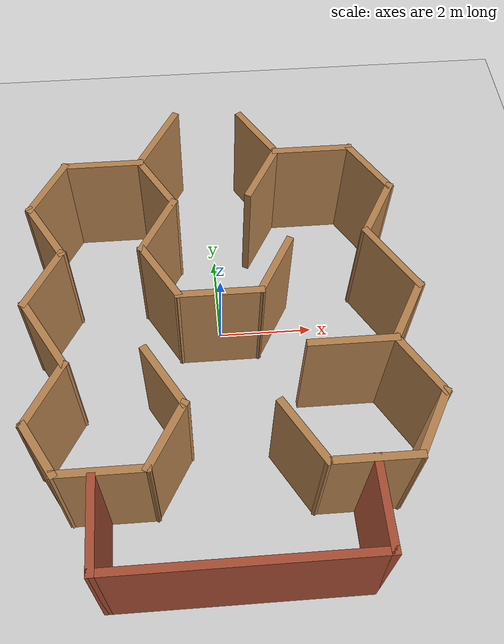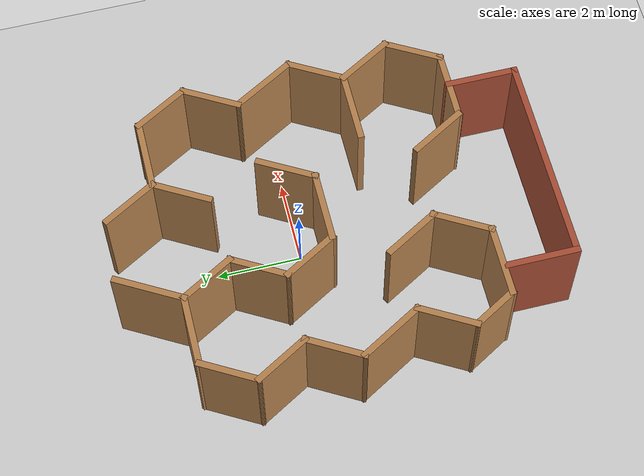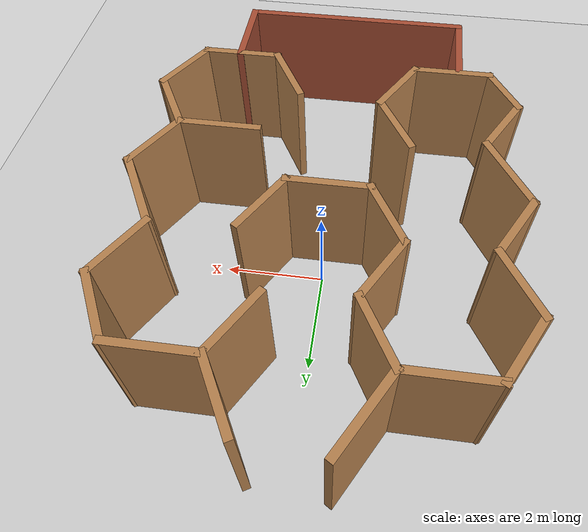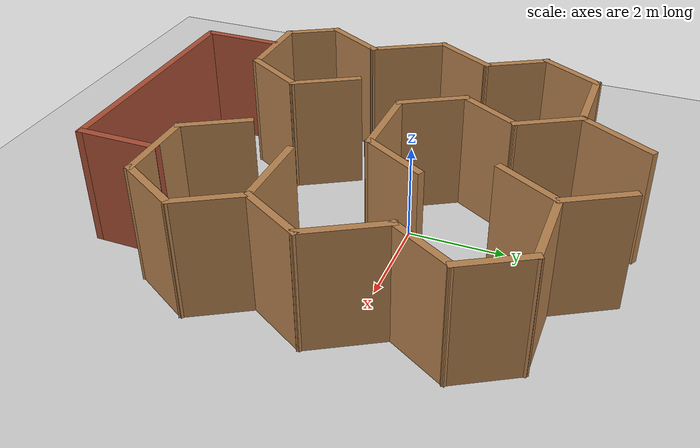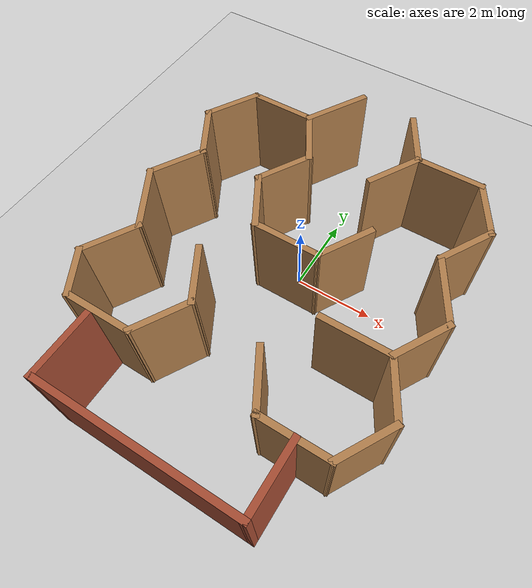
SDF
<sdf version="1.7">
 <world name="default">
  <light name="sun" type="directional">
   <pose>0 0 10 0 -0 0</pose>
   <diffuse>0.8 0.8 0.8 1</diffuse>
   <specular>0.2 0.2 0.2 1</specular>
   <attenuation>
    <range>1000</range>
    <constant>0.9</constant>
    <linear>0.01</linear>
    <quadratic>0.001</quadratic>
   </attenuation>
   <direction>-0.5 0.1 -0.9</direction>
   <spot><inner_angle>0</inner_angle><outer_angle>0</outer_angle><falloff>0</falloff></spot>
  </light>
  <model name="ground_plane">
   <static>1</static>
   <link name="link">
    <collision name="collision">
     <geometry><plane><normal>0 0 1</normal><size>100 100</size></plane></geometry>
     <surface><friction><ode><mu>100</mu><mu2>50</mu2></ode></friction></surface>
    </collision>
    <visual name="visual">
     <cast_shadows>0</cast_shadows>
     <geometry><plane><normal>0 0 1</normal><size>100 100</size></plane></geometry>
     <material>
      <script><uri>file://media/materials/scripts/gazebo.material</uri><name>Gazebo/Grey</name></script>
     </material>
    </visual>
   </link>
  </model>
  <gravity>0 0 -9.8</gravity>
  <magnetic_field>6e-06 2.3e-05 -4.2e-05</magnetic_field>
  <atmosphere type="adiabatic"/>
  <physics type="ode">
   <max_step_size>0.001</max_step_size>
   <real_time_factor>1</real_time_factor>
   <real_time_update_rate>1000</real_time_update_rate>
  </physics>
  <scene><ambient>0.4 0.4 0.4 1</ambient><background>0.7 0.7 0.7 1</background><shadows>1</shadows></scene>
  <audio><device>default</device></audio>
  <spherical_coordinates>
   <surface_model>EARTH_WGS84</surface_model>
   <latitude_deg>0</latitude_deg>
   <longitude_deg>0</longitude_deg>
   <elevation>0</elevation>
   <heading_deg>0</heading_deg>
  </spherical_coordinates>
  <model name="3*3_sigma_maze">
   <pose>0.010993 -0.702151 0 0 -0 0</pose>
   <link name="Wall_0">
    <collision name="Wall_0_Collision">
     <geometry><box><size>1.5 0.15 2.5</size></box></geometry>
     <pose>0 0 1.25 0 -0 0</pose>
    </collision>
    <visual name="Wall_0_Visual">
     <pose>0 0 1.25 0 -0 0</pose>
     <geometry><box><size>1.5 0.15 2.5</size></box></geometry>
     <material>
      <script><uri>file://media/materials/scripts/gazebo.material</uri><name>Gazebo/Wood</name></script>
      <ambient>1 1 1 1</ambient>
     </material>
     <meta><layer>0</layer></meta>
    </visual>
    <pose>-1.1959 -1.61502 0 0 -0 -1.0472</pose>
   </link>
   <link name="Wall_1">
    <collision name="Wall_1_Collision">
     <geometry><box><size>1.5 0.15 2.5</size></box></geometry>
     <pose>0 0 1.25 0 -0 0</pose>
    </collision>
    <visual name="Wall_1_Visual">
     <pose>0 0 1.25 0 -0 0</pose>
     <geometry><box><size>1.5 0.15 2.5</size></box></geometry>
     <material>
      <script><uri>file://media/materials/scripts/gazebo.material</uri><name>Gazebo/Wood</name></script>
      <ambient>1 1 1 1</ambient>
     </material>
     <meta><layer>0</layer></meta>
    </visual>
    <pose>-1.1959 -2.78416 0 0 -0 -2.0944</pose>
   </link>
   <link name="Wall_10">
    <collision name="Wall_10_Collision">
     <geometry><box><size>1.5 0.15 2.5</size></box></geometry>
     <pose>0 0 1.25 0 -0 0</pose>
    </collision>
    <visual name="Wall_10_Visual">
     <pose>0 0 1.25 0 -0 0</pose>
     <geometry><box><size>1.5 0.15 2.5</size></box></geometry>
     <material>
      <script><uri>file://media/materials/scripts/gazebo.material</uri><name>Gazebo/Wood</name></script>
      <ambient>1 1 1 1</ambient>
     </material>
     <meta><layer>0</layer></meta>
    </visual>
    <pose>-1.1959 3.06151 0 0 -0 -1.0472</pose>
   </link>
   <link name="Wall_11">
    <collision name="Wall_11_Collision">
     <geometry><box><size>1.5 0.15 2.5</size></box></geometry>
     <pose>0 0 1.25 0 -0 0</pose>
    </collision>
    <visual name="Wall_11_Visual">
     <pose>0 0 1.25 0 -0 0</pose>
     <geometry><box><size>1.5 0.15 2.5</size></box></geometry>
     <material>
      <script><uri>file://media/materials/scripts/gazebo.material</uri><name>Gazebo/Wood</name></script>
      <ambient>1 1 1 1</ambient>
     </material>
     <meta><layer>0</layer></meta>
    </visual>
    <pose>-1.1959 1.89238 0 0 -0 -2.0944</pose>
   </link>
   <link name="Wall_12">
    <collision name="Wall_12_Collision">
     <geometry><box><size>1.5 0.15 2.5</size></box></geometry>
     <pose>0 0 1.25 0 -0 0</pose>
    </collision>
    <visual name="Wall_12_Visual">
     <pose>0 0 1.25 0 -0 0</pose>
     <geometry><box><size>1.5 0.15 2.5</size></box></geometry>
     <material>
      <script><uri>file://media/materials/scripts/gazebo.material</uri><name>Gazebo/Wood</name></script>
      <ambient>1 1 1 1</ambient>
     </material>
     <meta><layer>0</layer></meta>
    </visual>
    <pose>-1.1959 0.723244 0 0 -0 -1.0472</pose>
   </link>
   <link name="Wall_13">
    <collision name="Wall_13_Collision">
     <geometry><box><size>1.75 0.15 2.5</size></box></geometry>
     <pose>0 0 1.25 0 -0 0</pose>
    </collision>
    <visual name="Wall_13_Visual">
     <pose>0 0 1.25 0 -0 0</pose>
     <geometry><box><size>1.75 0.15 2.5</size></box></geometry>
     <material>
      <script><uri>file://media/materials/scripts/gazebo.material</uri><name>Gazebo/Wood</name></script>
      <ambient>1 1 1 1</ambient>
     </material>
     <meta><layer>0</layer></meta>
    </visual>
    <pose>-0.0584 0.138676 0 0 -0 0</pose>
   </link>
   <link name="Wall_14">
    <collision name="Wall_14_Collision">
     <geometry><box><size>1.5 0.15 2.5</size></box></geometry>
     <pose>0 0 1.25 0 -0 0</pose>
    </collision>
    <visual name="Wall_14_Visual">
     <pose>0 0 1.25 0 -0 0</pose>
     <geometry><box><size>1.5 0.15 2.5</size></box></geometry>
     <material>
      <script><uri>file://media/materials/scripts/gazebo.material</uri><name>Gazebo/Wood</name></script>
      <ambient>1 1 1 1</ambient>
     </material>
     <meta><layer>0</layer></meta>
    </visual>
    <pose>1.0791 0.723244 0 0 -0 1.0472</pose>
   </link>
   <link name="Wall_16">
    <collision name="Wall_16_Collision">
     <geometry><box><size>1.75 0.15 2.5</size></box></geometry>
     <pose>0 0 1.25 0 -0 0</pose>
    </collision>
    <visual name="Wall_16_Visual">
     <pose>0 0 1.25 0 -0 0</pose>
     <geometry><box><size>1.75 0.15 2.5</size></box></geometry>
     <material>
      <script><uri>file://media/materials/scripts/gazebo.material</uri><name>Gazebo/Wood</name></script>
      <ambient>1 1 1 1</ambient>
     </material>
     <meta><layer>0</layer></meta>
    </visual>
    <pose>-1.1334 4.3389 0 0 -0 1.0472</pose>
   </link>
   <link name="Wall_18">
    <collision name="Wall_18_Collision">
     <geometry><box><size>1.5 0.15 2.5</size></box></geometry>
     <pose>0 0 1.25 0 -0 0</pose>
    </collision>
    <visual name="Wall_18_Visual">
     <pose>0 0 1.25 0 -0 0</pose>
     <geometry><box><size>1.5 0.15 2.5</size></box></geometry>
     <material>
      <script><uri>file://media/materials/scripts/gazebo.material</uri><name>Gazebo/Wood</name></script>
      <ambient>1 1 1 1</ambient>
     </material>
     <meta><layer>0</layer></meta>
    </visual>
    <pose>1.0709 4.35267 0 0 -0 -1.0472</pose>
   </link>
   <link name="Wall_19">
    <collision name="Wall_19_Collision">
     <geometry><box><size>1.5 0.15 2.5</size></box></geometry>
     <pose>0 0 1.25 0 -0 0</pose>
    </collision>
    <visual name="Wall_19_Visual">
     <pose>0 0 1.25 0 -0 0</pose>
     <geometry><box><size>1.5 0.15 2.5</size></box></geometry>
     <material>
      <script><uri>file://media/materials/scripts/gazebo.material</uri><name>Gazebo/Wood</name></script>
      <ambient>1 1 1 1</ambient>
     </material>
     <meta><layer>0</layer></meta>
    </visual>
    <pose>1.0709 3.18354 0 0 -0 -2.0944</pose>
   </link>
   <link name="Wall_2">
    <collision name="Wall_2_Collision">
     <geometry><box><size>1.75 0.15 2.5</size></box></geometry>
     <pose>0 0 1.25 0 -0 0</pose>
    </collision>
    <visual name="Wall_2_Visual">
     <pose>0 0 1.25 0 -0 0</pose>
     <geometry><box><size>1.75 0.15 2.5</size></box></geometry>
     <material>
      <script><uri>file://media/materials/scripts/gazebo.material</uri><name>Gazebo/Wood</name></script>
      <ambient>1 1 1 1</ambient>
     </material>
     <meta><layer>0</layer></meta>
    </visual>
    <pose>-2.3334 -3.36873 0 0 -0 3.14159</pose>
   </link>
   <link name="Wall_21">
    <collision name="Wall_21_Collision">
     <geometry><box><size>1.75 0.15 2.5</size></box></geometry>
     <pose>0 0 1.25 0 -0 0</pose>
    </collision>
    <visual name="Wall_21_Visual">
     <pose>0 0 1.25 0 -0 0</pose>
     <geometry><box><size>1.75 0.15 2.5</size></box></geometry>
     <material>
      <script><uri>file://media/materials/scripts/gazebo.material</uri><name>Gazebo/Wood</name></script>
      <ambient>1 1 1 1</ambient>
     </material>
     <meta><layer>0</layer></meta>
    </visual>
    <pose>2.2084 3.7681 0 0 -0 0</pose>
   </link>
   <link name="Wall_22">
    <collision name="Wall_22_Collision">
     <geometry><box><size>1.5 0.15 2.5</size></box></geometry>
     <pose>0 0 1.25 0 -0 0</pose>
    </collision>
    <visual name="Wall_22_Visual">
     <pose>0 0 1.25 0 -0 0</pose>
     <geometry><box><size>1.5 0.15 2.5</size></box></geometry>
     <material>
      <script><uri>file://media/materials/scripts/gazebo.material</uri><name>Gazebo/Wood</name></script>
      <ambient>1 1 1 1</ambient>
     </material>
     <meta><layer>0</layer></meta>
    </visual>
    <pose>3.3459 3.18354 0 0 -0 -1.0472</pose>
   </link>
   <link name="Wall_23">
    <collision name="Wall_23_Collision">
     <geometry><box><size>1.5 0.15 2.5</size></box></geometry>
     <pose>0 0 1.25 0 -0 0</pose>
    </collision>
    <visual name="Wall_23_Visual">
     <pose>0 0 1.25 0 -0 0</pose>
     <geometry><box><size>1.5 0.15 2.5</size></box></geometry>
     <material>
      <script><uri>file://media/materials/scripts/gazebo.material</uri><name>Gazebo/Wood</name></script>
      <ambient>1 1 1 1</ambient>
     </material>
     <meta><layer>0</layer></meta>
    </visual>
    <pose>3.3459 2.0144 0 0 -0 -2.0944</pose>
   </link>
   <link name="Wall_24">
    <collision name="Wall_24_Collision">
     <geometry><box><size>1.75 0.15 2.5</size></box></geometry>
     <pose>0 0 1.25 0 -0 0</pose>
    </collision>
    <visual name="Wall_24_Visual">
     <pose>0 0 1.25 0 -0 0</pose>
     <geometry><box><size>1.75 0.15 2.5</size></box></geometry>
     <material>
      <script><uri>file://media/materials/scripts/gazebo.material</uri><name>Gazebo/Wood</name></script>
      <ambient>1 1 1 1</ambient>
     </material>
     <meta><layer>0</layer></meta>
    </visual>
    <pose>3.4084 0.737016 0 0 -0 -1.0472</pose>
   </link>
   <link name="Wall_25">
    <collision name="Wall_25_Collision">
     <geometry><box><size>1.5 0.15 2.5</size></box></geometry>
     <pose>0 0 1.25 0 -0 0</pose>
    </collision>
    <visual name="Wall_25_Visual">
     <pose>0 0 1.25 0 -0 0</pose>
     <geometry><box><size>1.5 0.15 2.5</size></box></geometry>
     <material>
      <script><uri>file://media/materials/scripts/gazebo.material</uri><name>Gazebo/Wood</name></script>
      <ambient>1 1 1 1</ambient>
     </material>
     <meta><layer>0</layer></meta>
    </visual>
    <pose>3.4709 -0.540372 0 0 -0 -2.0944</pose>
   </link>
   <link name="Wall_26">
    <collision name="Wall_26_Collision">
     <geometry><box><size>1.5 0.15 2.5</size></box></geometry>
     <pose>0 0 1.25 0 -0 0</pose>
    </collision>
    <visual name="Wall_26_Visual">
     <pose>0 0 1.25 0 -0 0</pose>
     <geometry><box><size>1.5 0.15 2.5</size></box></geometry>
     <material>
      <script><uri>file://media/materials/scripts/gazebo.material</uri><name>Gazebo/Wood</name></script>
      <ambient>1 1 1 1</ambient>
     </material>
     <meta><layer>0</layer></meta>
    </visual>
    <pose>3.4709 -1.70951 0 0 -0 -1.0472</pose>
   </link>
   <link name="Wall_27">
    <collision name="Wall_27_Collision">
     <geometry><box><size>1.5 0.15 2.5</size></box></geometry>
     <pose>0 0 1.25 0 -0 0</pose>
    </collision>
    <visual name="Wall_27_Visual">
     <pose>0 0 1.25 0 -0 0</pose>
     <geometry><box><size>1.5 0.15 2.5</size></box></geometry>
     <material>
      <script><uri>file://media/materials/scripts/gazebo.material</uri><name>Gazebo/Wood</name></script>
      <ambient>1 1 1 1</ambient>
     </material>
     <meta><layer>0</layer></meta>
    </visual>
    <pose>3.4709 -2.87864 0 0 -0 -2.0944</pose>
   </link>
   <link name="Wall_28">
    <collision name="Wall_28_Collision">
     <geometry><box><size>1.75 0.15 2.5</size></box></geometry>
     <pose>0 0 1.25 0 -0 0</pose>
    </collision>
    <visual name="Wall_28_Visual">
     <pose>0 0 1.25 0 -0 0</pose>
     <geometry><box><size>1.75 0.15 2.5</size></box></geometry>
     <material>
      <script><uri>file://media/materials/scripts/gazebo.material</uri><name>Gazebo/Wood</name></script>
      <ambient>1 1 1 1</ambient>
     </material>
     <meta><layer>0</layer></meta>
    </visual>
    <pose>2.3334 -3.46321 0 0 -0 3.14159</pose>
   </link>
   <link name="Wall_29">
    <collision name="Wall_29_Collision">
     <geometry><box><size>1.5 0.15 2.5</size></box></geometry>
     <pose>0 0 1.25 0 -0 0</pose>
    </collision>
    <visual name="Wall_29_Visual">
     <pose>0 0 1.25 0 -0 0</pose>
     <geometry><box><size>1.5 0.15 2.5</size></box></geometry>
     <material>
      <script><uri>file://media/materials/scripts/gazebo.material</uri><name>Gazebo/Wood</name></script>
      <ambient>1 1 1 1</ambient>
     </material>
     <meta><layer>0</layer></meta>
    </visual>
    <pose>1.1959 -2.87864 0 0 -0 2.0944</pose>
   </link>
   <link name="Wall_3">
    <collision name="Wall_3_Collision">
     <geometry><box><size>1.25 0.15 2.5</size></box></geometry>
     <pose>0 0 1.25 0 -0 0</pose>
    </collision>
    <visual name="Wall_3_Visual">
     <pose>0 0 1.25 0 -0 0</pose>
     <geometry><box><size>1.25 0.15 2.5</size></box></geometry>
     <material>
      <script><uri>file://media/materials/scripts/gazebo.material</uri><name>Gazebo/Wood</name></script>
      <ambient>1 1 1 1</ambient>
     </material>
     <meta><layer>0</layer></meta>
    </visual>
    <pose>-3.4084 -2.89241 0 0 -0 2.0944</pose>
   </link>
   <link name="Wall_31">
    <collision name="Wall_31_Collision">
     <geometry><box><size>1.75 0.15 2.5</size></box></geometry>
     <pose>0 0 1.25 0 -0 0</pose>
    </collision>
    <visual name="Wall_31_Visual">
     <pose>0 0 1.25 0 -0 0</pose>
     <geometry><box><size>1.75 0.15 2.5</size></box></geometry>
     <material>
      <script><uri>file://media/materials/scripts/gazebo.material</uri><name>Gazebo/Wood</name></script>
      <ambient>1 1 1 1</ambient>
     </material>
     <meta><layer>0</layer></meta>
    </visual>
    <pose>2.3334 -1.12494 0 0 -0 3.14159</pose>
   </link>
   <link name="Wall_33">
    <collision name="Wall_33_Collision">
     <geometry><box><size>1.75 0.15 2.5</size></box></geometry>
     <pose>0 0 1.25 0 -0 0</pose>
    </collision>
    <visual name="Wall_33_Visual">
     <pose>0 0 1.25 0 -0 0</pose>
     <geometry><box><size>1.75 0.15 2.5</size></box></geometry>
     <material>
      <script><uri>file://media/materials/scripts/gazebo.material</uri><name>Gazebo/Bricks</name></script>
      <ambient>1 1 1 1</ambient>
     </material>
     <meta><layer>0</layer></meta>
    </visual>
    <pose>-2.48176 -4.25917 0 0 -0 -1.5708</pose>
   </link>
   <link name="Wall_34">
    <collision name="Wall_34_Collision">
     <geometry><box><size>5 0.15 2.5</size></box></geometry>
     <pose>0 0 1.25 0 -0 0</pose>
    </collision>
    <visual name="Wall_34_Visual">
     <pose>0 0 1.25 0 -0 0</pose>
     <geometry><box><size>5 0.15 2.5</size></box></geometry>
     <material>
      <script><uri>file://media/materials/scripts/gazebo.material</uri><name>Gazebo/Bricks</name></script>
      <ambient>1 1 1 1</ambient>
     </material>
     <meta><layer>0</layer></meta>
    </visual>
    <pose>-0.056755 -5.05917 0 0 -0 0</pose>
   </link>
   <link name="Wall_35">
    <collision name="Wall_35_Collision">
     <geometry><box><size>1.75 0.15 2.5</size></box></geometry>
     <pose>0 0 1.25 0 -0 0</pose>
    </collision>
    <visual name="Wall_35_Visual">
     <pose>0 0 1.25 0 -0 0</pose>
     <geometry><box><size>1.75 0.15 2.5</size></box></geometry>
     <material>
      <script><uri>file://media/materials/scripts/gazebo.material</uri><name>Gazebo/Bricks</name></script>
      <ambient>1 1 1 1</ambient>
     </material>
     <meta><layer>0</layer></meta>
    </visual>
    <pose>2.36824 -4.25917 0 0 -0 1.5708</pose>
   </link>
   <link name="Wall_4">
    <collision name="Wall_4_Collision">
     <geometry><box><size>1.5 0.15 2.5</size></box></geometry>
     <pose>0 0 1.25 0 -0 0</pose>
    </collision>
    <visual name="Wall_4_Visual">
     <pose>0 0 1.25 0 -0 0</pose>
     <geometry><box><size>1.5 0.15 2.5</size></box></geometry>
     <material>
      <script><uri>file://media/materials/scripts/gazebo.material</uri><name>Gazebo/Wood</name></script>
      <ambient>1 1 1 1</ambient>
     </material>
     <meta><layer>0</layer></meta>
    </visual>
    <pose>-3.3459 -1.83153 0 0 -0 1.0472</pose>
   </link>
   <link name="Wall_5">
    <collision name="Wall_5_Collision">
     <geometry><box><size>1.75 0.15 2.5</size></box></geometry>
     <pose>0 0 1.25 0 -0 0</pose>
    </collision>
    <visual name="Wall_5_Visual">
     <pose>0 0 1.25 0 -0 0</pose>
     <geometry><box><size>1.75 0.15 2.5</size></box></geometry>
     <material>
      <script><uri>file://media/materials/scripts/gazebo.material</uri><name>Gazebo/Wood</name></script>
      <ambient>1 1 1 1</ambient>
     </material>
     <meta><layer>0</layer></meta>
    </visual>
    <pose>-3.4084 -0.554144 0 0 -0 2.0944</pose>
   </link>
   <link name="Wall_6">
    <collision name="Wall_6_Collision">
     <geometry><box><size>1.5 0.15 2.5</size></box></geometry>
     <pose>0 0 1.25 0 -0 0</pose>
    </collision>
    <visual name="Wall_6_Visual">
     <pose>0 0 1.25 0 -0 0</pose>
     <geometry><box><size>1.5 0.15 2.5</size></box></geometry>
     <material>
      <script><uri>file://media/materials/scripts/gazebo.material</uri><name>Gazebo/Wood</name></script>
      <ambient>1 1 1 1</ambient>
     </material>
     <meta><layer>0</layer></meta>
    </visual>
    <pose>-3.4709 0.723244 0 0 -0 1.0472</pose>
   </link>
   <link name="Wall_7">
    <collision name="Wall_7_Collision">
     <geometry><box><size>1.5 0.15 2.5</size></box></geometry>
     <pose>0 0 1.25 0 -0 0</pose>
    </collision>
    <visual name="Wall_7_Visual">
     <pose>0 0 1.25 0 -0 0</pose>
     <geometry><box><size>1.5 0.15 2.5</size></box></geometry>
     <material>
      <script><uri>file://media/materials/scripts/gazebo.material</uri><name>Gazebo/Wood</name></script>
      <ambient>1 1 1 1</ambient>
     </material>
     <meta><layer>0</layer></meta>
    </visual>
    <pose>-3.4709 1.89238 0 0 -0 2.0944</pose>
   </link>
   <link name="Wall_8">
    <collision name="Wall_8_Collision">
     <geometry><box><size>1.5 0.15 2.5</size></box></geometry>
     <pose>0 0 1.25 0 -0 0</pose>
    </collision>
    <visual name="Wall_8_Visual">
     <pose>0 0 1.25 0 -0 0</pose>
     <geometry><box><size>1.5 0.15 2.5</size></box></geometry>
     <material>
      <script><uri>file://media/materials/scripts/gazebo.material</uri><name>Gazebo/Wood</name></script>
      <ambient>1 1 1 1</ambient>
     </material>
     <meta><layer>0</layer></meta>
    </visual>
    <pose>-3.4709 3.06151 0 0 -0 1.0472</pose>
   </link>
   <link name="Wall_9">
    <collision name="Wall_9_Collision">
     <geometry><box><size>1.75 0.15 2.5</size></box></geometry>
     <pose>0 0 1.25 0 -0 0</pose>
    </collision>
    <visual name="Wall_9_Visual">
     <pose>0 0 1.25 0 -0 0</pose>
     <geometry><box><size>1.75 0.15 2.5</size></box></geometry>
     <material>
      <script><uri>file://media/materials/scripts/gazebo.material</uri><name>Gazebo/Wood</name></script>
      <ambient>1 1 1 1</ambient>
     </material>
     <meta><layer>0</layer></meta>
    </visual>
    <pose>-2.3334 3.64608 0 0 -0 0</pose>
   </link>
   <static>1</static>
  </model>
 </world>
</sdf>
